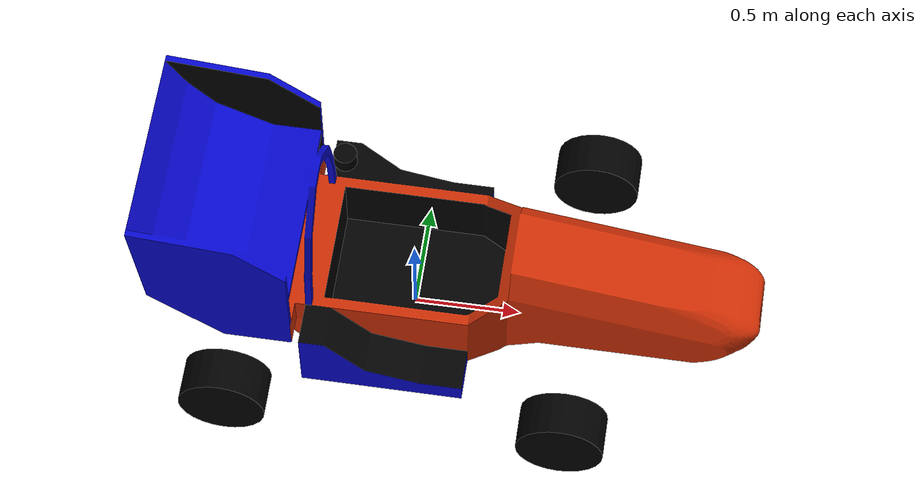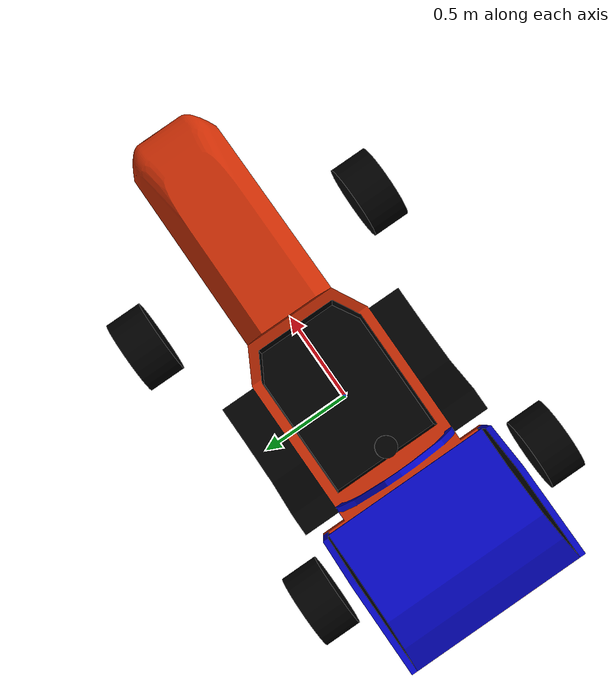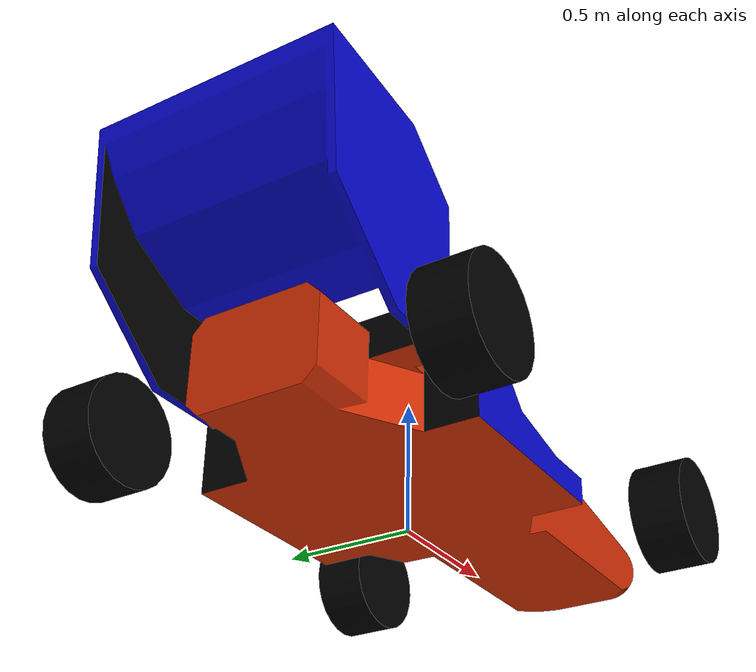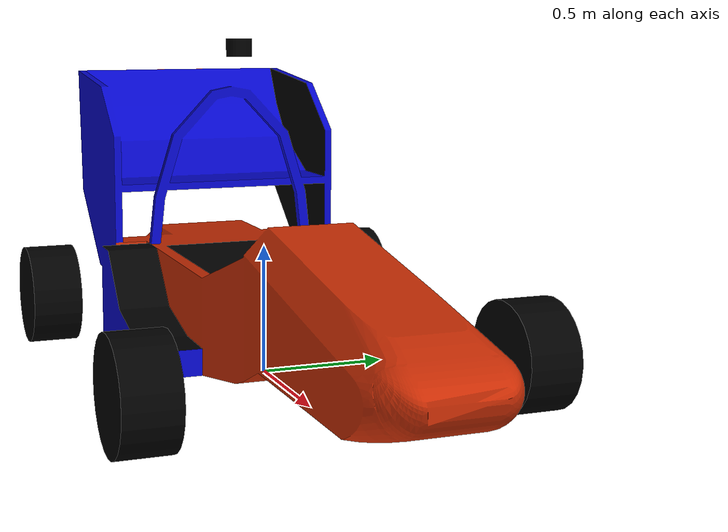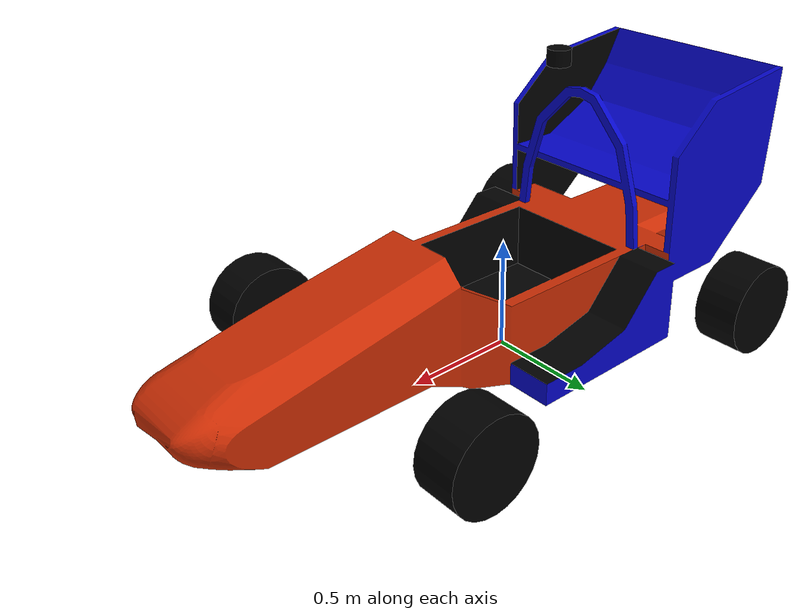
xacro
<?xml version="1.0"?>
<robot name="qev-3d" xmlns:xacro="http://ros.org/wiki/xacro">

  <!--  Get the parameters  -->
  <xacro:arg name="base_frame" default="base_link"/>
  <xacro:arg name="display_car" default="true"/>
  <xacro:property name="chassis_link" default="chassis"/>

  <xacro:property name="degrees_90" value="1.5708"/>
  <xacro:property name="M_PI" value="3.1415926535897931" />

  <xacro:property name="steering_limit" default="0.28"/>
  <xacro:property name="wheel_diameter" value="0.4064"/>
  <xacro:property name="wheel_width" value="0.2"/>
  <xacro:property name="chassis_width" value="1.6"/>
  <xacro:property name="wheelbase" value="1.580"/>

  <!-- material -->
  <material name="black">
    <color rgba="0 0 0 1"/>
  </material>

  <material name="orange">
    <color rgba="0.88 0.36 0.035 1"/>
  </material>

  <!-- Vehicle include -->
  <xacro:include filename="$(find vehicle_urdf)/urdf/vehicle.urdf.xacro"/>
  <!-- Chassis of the car -->
  <xacro:chassis base_frame="$(arg base_frame)" display_car="$(arg display_car)"/>
  <!-- Wheels -->
  <xacro:wheels/>

  <!-- Sensors include -->
  <xacro:include filename="$(find vehicle_urdf)/urdf/sensors.urdf.xacro"/>
  <xacro:velodyne parent="${chassis_link}" name="velodyne">
    <origin xyz="-0.3 0 1.0532" rpy="0 0 0"/>
  </xacro:velodyne>

  <gazebo>
    <plugin
      filename="libgazebo_ros_race_car.so"
      name="gazebo_plugins::eufs_plugins::RaceCarPlugin">

      <command_mode>velocity</command_mode>

      <wheelbase>1.53</wheelbase>
      <max_speed>20.0</max_speed>
      <max_accel>8.0</max_accel>
      <max_decel>12.0</max_decel>
      <max_steering_deg>35.0</max_steering_deg>

      <update_rate>100.0</update_rate>
      <publish_rate>50.0</publish_rate>
      <command_timeout>1.0</command_timeout>

      <map_frame>map</map_frame>
      <odom_frame>odom</odom_frame>
      <base_frame>base_link</base_frame>

      <simulate_transform>false</simulate_transform>
      <publish_ground_truth>true</publish_ground_truth>
      <simulate_slam>true</simulate_slam>

    </plugin>

    <plugin
      filename="libgazebo_ros_cone_detection.so"
      name="gazebo_plugins::eufs_plugins::ConeDetectionPlugin">
    </plugin>
  </gazebo>
</robot>

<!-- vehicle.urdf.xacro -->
<robot xmlns:xacro="http://www.ros.org/wiki/xacro">
  <xacro:macro name="chassis" params="base_frame display_car">
    <!-- Base Frame -->
    <link name="${base_frame}">
      <inertial>
        <origin xyz="0 0 0" rpy="0 0 0"/>
        <mass value="0.001"/>
        <inertia
          ixx="0.000001" ixy="0.0" ixz="0.0"
          iyy="0.000001" iyz="0.0"
          izz="0.000001"/>
      </inertial>
    </link>

    <!-- Chassis -->
    <joint name="${chassis_link}_joint" type="fixed">
      <parent link="${base_frame}"/>
      <child link="${chassis_link}"/>
      <!-- Wheel height off ground -->
      <origin xyz="0 0 ${wheel_diameter/2}"
              rpy="0 0 0"/>
      <axis xyz="1 0 0"/>
    </joint>

    <link name="${chassis_link}">
      <inertial>
        <origin xyz="0.3 0 0.2" rpy="0 0 0"/>
        <mass value="300.0"/>
        <inertia
          ixx="40.0" ixy="0.0" ixz="0.0"
          iyy="120.0" iyz="0.0"
          izz="140.0"/>
      </inertial>

      <collision name="chassis_collision">
        <origin xyz="0.3 0 0.2" rpy="0 0 0"/>
        <geometry>
          <box size="2.5 0.7 0.6"/>
        </geometry>
      </collision>

      <visual>
        <xacro:if value="${display_car}">
          <origin xyz="0 0 0" rpy="0 0 0"/>
          <geometry>
            <mesh filename="file://$(find vehicle_urdf)/meshes/lando.dae"/>
          </geometry>
        </xacro:if>
        <xacro:unless value="${display_car}">
          <origin xyz="0.3 0 0.2" rpy="0 0 0"/>
          <geometry>
            <box size="2.5 0.7 0.6"/>
          </geometry>
          <material name="orange"/>
        </xacro:unless>
      </visual>
      <origin xyz="0 0 0" rpy="0 0 0"/>
    </link>
  </xacro:macro>

  <!-- Wheels -->
  <xacro:macro name="wheels">
    <!-- Wheel description -->
    <xacro:macro name="wheel" params="lr_prefix fr_prefix">
      <link name="${lr_prefix}_${fr_prefix}_wheel">
        <visual>
          <origin xyz="0 0 0" rpy="${degrees_90} 0 0"/>
          <geometry>
            <cylinder radius="${wheel_diameter / 2}" length="${wheel_width}"/>
          </geometry>
          <material name="black"/>
        </visual>
      </link>
    </xacro:macro>

    <!-- Front and rear wheel descriptions -->
    <!-- Description of how a front wheel is connected to the chassis -->
    <xacro:macro name="front_wheel" params="lr_prefix lr_reflect">
      <link name="${lr_prefix}_steering_hinge"/>

      <joint name="${lr_prefix}_steering_hinge_joint" type="fixed">
        <origin xyz="${wheelbase / 2}
                     ${lr_reflect * ((chassis_width - wheel_width) / 2)}
                     0"
                rpy="0 0 0"/>
        <parent link="${chassis_link}"/>
        <child link="${lr_prefix}_steering_hinge"/>
        <axis xyz="0 0 1"/>
        <limit lower="${-1*steering_limit}" upper="${steering_limit}" effort="10000000" velocity="1000000"/>
      </joint>

      <joint name="front_${lr_prefix}_wheel_joint" type="fixed">
        <origin xyz="0 0 0"
                rpy="0 0 0"/>
        <parent link="${lr_prefix}_steering_hinge"/>
        <child link="${lr_prefix}_front_wheel"/>
        <axis xyz="0 1 0"/>
        <limit lower="0" upper="0" effort="10000000" velocity="1000000"/>
      </joint>

      <xacro:wheel lr_prefix="${lr_prefix}" fr_prefix="front"/>
    </xacro:macro>

    <!-- Description of how a rear wheel is connected to the chassis -->
    <xacro:macro name="rear_wheel" params="lr_prefix lr_reflect">
      <joint name="rear_${lr_prefix}_wheel_joint" type="fixed">
        <origin xyz="${-1 * wheelbase / 2}
                     ${lr_reflect * ((chassis_width - wheel_width) / 2)}
                     0"
                rpy="0 0 0"/>
        <parent link="${chassis_link}"/>
        <child link="${lr_prefix}_rear_wheel"/>
        <axis xyz="0 1 0"/>
        <limit lower="0" upper="0" effort="10000000" velocity="1000000"/>
      </joint>

      <xacro:wheel lr_prefix="${lr_prefix}" fr_prefix="rear"/>
    </xacro:macro>

    <!-- Add the wheels -->
    <xacro:front_wheel lr_prefix="left" lr_reflect="1"/>
    <xacro:front_wheel lr_prefix="right" lr_reflect="-1"/>

    <xacro:rear_wheel lr_prefix="left" lr_reflect="1" />
    <xacro:rear_wheel lr_prefix="right" lr_reflect="-1" />
  </xacro:macro>
</robot>

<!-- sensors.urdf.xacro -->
<robot xmlns:xacro="http://www.ros.org/wiki/xacro">

  <xacro:macro name="velodyne" params="*origin parent name enable_lidar:=false enable_laserscan:=false">

    <joint name="${name}_base_mount_joint" type="fixed">
      <xacro:insert_block name="origin"/>
      <parent link="${parent}"/>
      <child link="${name}"/>
    </joint>

    <link name="${name}">
      <inertial>
        <origin xyz="0 0 0" rpy="0 0 0"/>
        <mass value="0.1"/>
        <inertia
          ixx="0.0001" ixy="0.0" ixz="0.0"
          iyy="0.0001" iyz="0.0"
          izz="0.0001"/>
      </inertial>

      <visual>
        <origin xyz="0 0 0" rpy="0 0 0"/>
        <geometry>
          <cylinder radius="0.0516" length="0.0717"/>
        </geometry>
        <material name="black"/>
      </visual>

      <collision>
        <origin xyz="0 0 0" rpy="0 0 0"/>
        <geometry>
          <cylinder radius="0.0516" length="0.0717"/>
        </geometry>
      </collision>
    </link>

    <gazebo reference="${name}">
      <sensor name="${name}_gpu_lidar" type="gpu_lidar">
        <pose>0 0 0 0 0 0</pose>
        <topic>/lidar</topic>
        <gz_frame_id>${name}</gz_frame_id>
        <update_rate>20</update_rate>
        <always_on>true</always_on>
        <visualize>true</visualize>

        <ray>
          <scan>
            <horizontal>
              <samples>240</samples>
              <resolution>1</resolution>
              <min_angle>-1</min_angle>
              <max_angle>1</max_angle>
            </horizontal>
            <vertical>
              <samples>16</samples>
              <resolution>1</resolution>
              <min_angle>-0.25</min_angle>
              <max_angle>0</max_angle>
            </vertical>
          </scan>
          <range>
            <min>0.3</min>
            <max>30.0</max>
            <resolution>0.01</resolution>
          </range>
        </ray>
      </sensor>
    </gazebo>

  </xacro:macro>

</robot>
